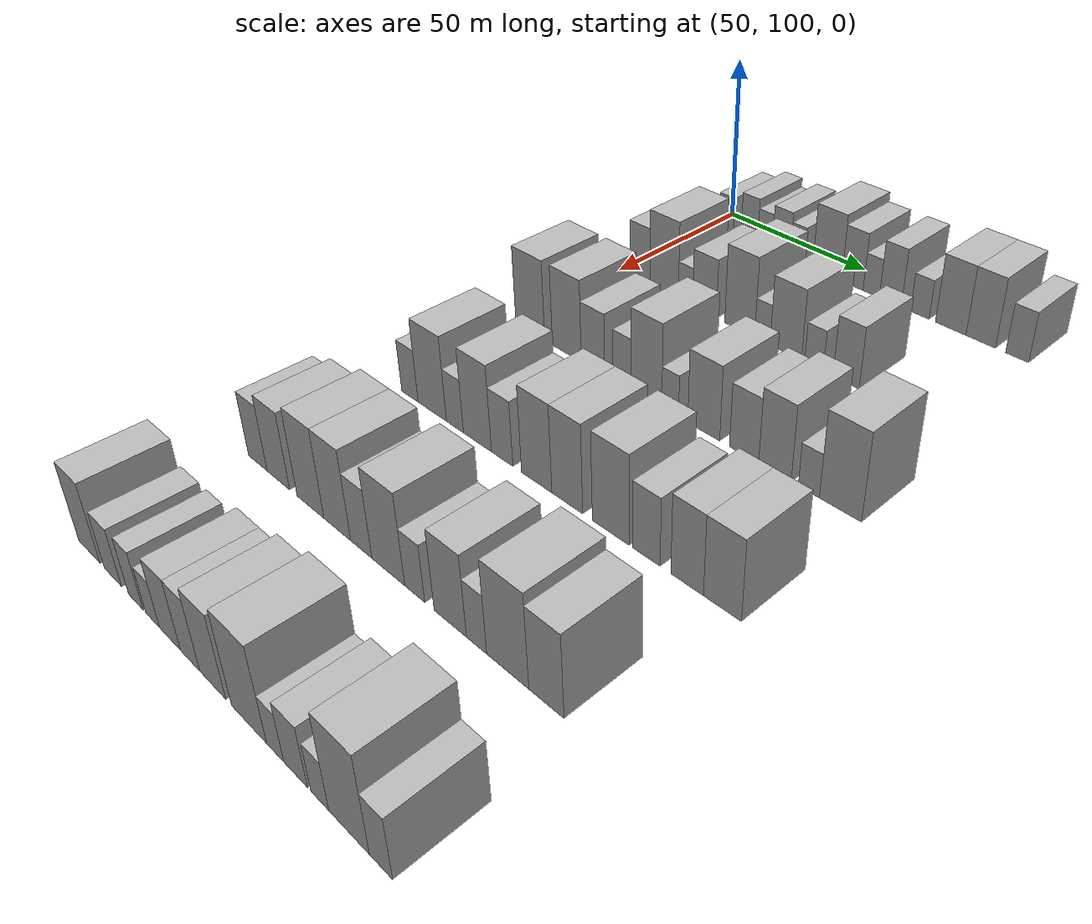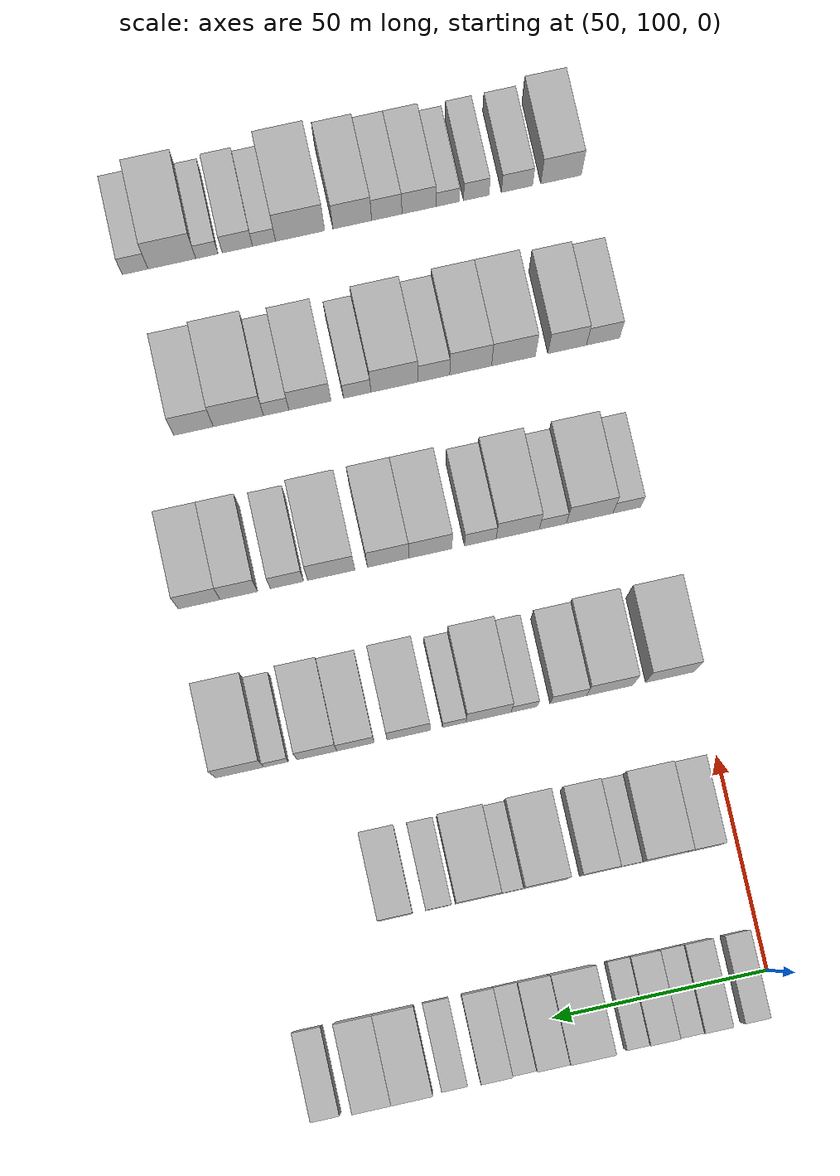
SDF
<sdf version="1.6">
 <world name="default">
  <model name="building_73">
   <static>1</static>
   <pose>50.0000 105.7964 0 0.000000 0.000000 0.000000</pose>
   <link name="link">
    <pose>0 0 6.00 0 0 0</pose>
    <collision name="collision"><geometry><box><size>20.0000 5.8852 12.0000</size></box></geometry></collision>
    <visual name="visual">
     <cast_shadows>0</cast_shadows>
     <geometry><box><size>20.0000 5.8852 12.0000</size></box></geometry>
     <material>
      <script>
       <uri>model://HANNAS_wall/materials/scripts</uri>
       <uri>model://HANNAS_wall/materials/textures</uri>
       <name>vrc/HANNAS_wall</name>
      </script>
     </material>
    </visual>
   </link>
  </model>
  <model name="building_74">
   <static>1</static>
   <pose>50.0000 114.9547 0 0.000000 0.000000 0.000000</pose>
   <link name="link">
    <pose>0 0 7.50 0 0 0</pose>
    <collision name="collision"><geometry><box><size>20.0000 6.4314 15.0000</size></box></geometry></collision>
    <visual name="visual">
     <cast_shadows>0</cast_shadows>
     <geometry><box><size>20.0000 6.4314 15.0000</size></box></geometry>
     <material>
      <script>
       <uri>model://HANNAS_wall/materials/scripts</uri>
       <uri>model://HANNAS_wall/materials/textures</uri>
       <name>vrc/HANNAS_wall</name>
      </script>
     </material>
    </visual>
   </link>
  </model>
  <model name="building_75">
   <static>1</static>
   <pose>50.0000 120.9722 0 0.000000 0.000000 0.000000</pose>
   <link name="link">
    <pose>0 0 6.00 0 0 0</pose>
    <collision name="collision"><geometry><box><size>20.0000 5.6037 12.0000</size></box></geometry></collision>
    <visual name="visual">
     <cast_shadows>0</cast_shadows>
     <geometry><box><size>20.0000 5.6037 12.0000</size></box></geometry>
     <material>
      <script>
       <uri>model://HANNAS_wall/materials/scripts</uri>
       <uri>model://HANNAS_wall/materials/textures</uri>
       <name>vrc/HANNAS_wall</name>
      </script>
     </material>
    </visual>
   </link>
  </model>
  <model name="building_76">
   <static>1</static>
   <pose>50.0000 127.1886 0 0.000000 0.000000 0.000000</pose>
   <link name="link">
    <pose>0 0 7.50 0 0 0</pose>
    <collision name="collision"><geometry><box><size>20.0000 6.8289 15.0000</size></box></geometry></collision>
    <visual name="visual">
     <cast_shadows>0</cast_shadows>
     <geometry><box><size>20.0000 6.8289 15.0000</size></box></geometry>
     <material>
      <script>
       <uri>model://HANNAS_wall/materials/scripts</uri>
       <uri>model://HANNAS_wall/materials/textures</uri>
       <name>vrc/HANNAS_wall</name>
      </script>
     </material>
    </visual>
   </link>
  </model>
  <model name="building_77">
   <static>1</static>
   <pose>50.0000 133.1987 0 0.000000 0.000000 0.000000</pose>
   <link name="link">
    <pose>0 0 6.00 0 0 0</pose>
    <collision name="collision"><geometry><box><size>20.0000 5.1913 12.0000</size></box></geometry></collision>
    <visual name="visual">
     <cast_shadows>0</cast_shadows>
     <geometry><box><size>20.0000 5.1913 12.0000</size></box></geometry>
     <material>
      <script>
       <uri>model://HANNAS_wall/materials/scripts</uri>
       <uri>model://HANNAS_wall/materials/textures</uri>
       <name>vrc/HANNAS_wall</name>
      </script>
     </material>
    </visual>
   </link>
  </model>
  <model name="building_78">
   <static>1</static>
   <pose>50.0000 143.9286 0 0.000000 0.000000 0.000000</pose>
   <link name="link">
    <pose>0 0 10.50 0 0 0</pose>
    <collision name="collision"><geometry><box><size>20.0000 10.2685 21.0000</size></box></geometry></collision>
    <visual name="visual">
     <cast_shadows>0</cast_shadows>
     <geometry><box><size>20.0000 10.2685 21.0000</size></box></geometry>
     <material>
      <script>
       <uri>model://HANNAS_wall/materials/scripts</uri>
       <uri>model://HANNAS_wall/materials/textures</uri>
       <name>vrc/HANNAS_wall</name>
      </script>
     </material>
    </visual>
   </link>
  </model>
  <model name="building_79">
   <static>1</static>
   <pose>50.0000 152.7708 0 0.000000 0.000000 0.000000</pose>
   <link name="link">
    <pose>0 0 9.00 0 0 0</pose>
    <collision name="collision"><geometry><box><size>20.0000 7.4159 18.0000</size></box></geometry></collision>
    <visual name="visual">
     <cast_shadows>0</cast_shadows>
     <geometry><box><size>20.0000 7.4159 18.0000</size></box></geometry>
     <material>
      <script>
       <uri>model://HANNAS_wall/materials/scripts</uri>
       <uri>model://HANNAS_wall/materials/textures</uri>
       <name>vrc/HANNAS_wall</name>
      </script>
     </material>
    </visual>
   </link>
  </model>
  <model name="building_80">
   <static>1</static>
   <pose>50.0000 159.2248 0 0.000000 0.000000 0.000000</pose>
   <link name="link">
    <pose>0 0 6.00 0 0 0</pose>
    <collision name="collision"><geometry><box><size>20.0000 5.4920 12.0000</size></box></geometry></collision>
    <visual name="visual">
     <cast_shadows>0</cast_shadows>
     <geometry><box><size>20.0000 5.4920 12.0000</size></box></geometry>
     <material>
      <script>
       <uri>model://HANNAS_wall/materials/scripts</uri>
       <uri>model://HANNAS_wall/materials/textures</uri>
       <name>vrc/HANNAS_wall</name>
      </script>
     </material>
    </visual>
   </link>
  </model>
  <model name="building_81">
   <static>1</static>
   <pose>50.0000 165.5749 0 0.000000 0.000000 0.000000</pose>
   <link name="link">
    <pose>0 0 9.00 0 0 0</pose>
    <collision name="collision"><geometry><box><size>20.0000 7.2083 18.0000</size></box></geometry></collision>
    <visual name="visual">
     <cast_shadows>0</cast_shadows>
     <geometry><box><size>20.0000 7.2083 18.0000</size></box></geometry>
     <material>
      <script>
       <uri>model://HANNAS_wall/materials/scripts</uri>
       <uri>model://HANNAS_wall/materials/textures</uri>
       <name>vrc/HANNAS_wall</name>
      </script>
     </material>
    </visual>
   </link>
  </model>
  <model name="building_82">
   <static>1</static>
   <pose>50.0000 175.1410 0 0.000000 0.000000 0.000000</pose>
   <link name="link">
    <pose>0 0 6.00 0 0 0</pose>
    <collision name="collision"><geometry><box><size>20.0000 5.9239 12.0000</size></box></geometry></collision>
    <visual name="visual">
     <cast_shadows>0</cast_shadows>
     <geometry><box><size>20.0000 5.9239 12.0000</size></box></geometry>
     <material>
      <script>
       <uri>model://HANNAS_wall/materials/scripts</uri>
       <uri>model://HANNAS_wall/materials/textures</uri>
       <name>vrc/HANNAS_wall</name>
      </script>
     </material>
    </visual>
   </link>
  </model>
  <model name="building_83">
   <static>1</static>
   <pose>50.0000 184.8120 0 0.000000 0.000000 0.000000</pose>
   <link name="link">
    <pose>0 0 10.50 0 0 0</pose>
    <collision name="collision"><geometry><box><size>20.0000 9.4180 21.0000</size></box></geometry></collision>
    <visual name="visual">
     <cast_shadows>0</cast_shadows>
     <geometry><box><size>20.0000 9.4180 21.0000</size></box></geometry>
     <material>
      <script>
       <uri>model://HANNAS_wall/materials/scripts</uri>
       <uri>model://HANNAS_wall/materials/textures</uri>
       <name>vrc/HANNAS_wall</name>
      </script>
     </material>
    </visual>
   </link>
  </model>
  <model name="building_84">
   <static>1</static>
   <pose>50.0000 193.8947 0 0.000000 0.000000 0.000000</pose>
   <link name="link">
    <pose>0 0 10.50 0 0 0</pose>
    <collision name="collision"><geometry><box><size>20.0000 8.7476 21.0000</size></box></geometry></collision>
    <visual name="visual">
     <cast_shadows>0</cast_shadows>
     <geometry><box><size>20.0000 8.7476 21.0000</size></box></geometry>
     <material>
      <script>
       <uri>model://HANNAS_wall/materials/scripts</uri>
       <uri>model://HANNAS_wall/materials/textures</uri>
       <name>vrc/HANNAS_wall</name>
      </script>
     </material>
    </visual>
   </link>
  </model>
  <model name="building_85">
   <static>1</static>
   <pose>50.0000 204.5671 0 0.000000 0.000000 0.000000</pose>
   <link name="link">
    <pose>0 0 7.50 0 0 0</pose>
    <collision name="collision"><geometry><box><size>20.0000 6.5972 15.0000</size></box></geometry></collision>
    <visual name="visual">
     <cast_shadows>0</cast_shadows>
     <geometry><box><size>20.0000 6.5972 15.0000</size></box></geometry>
     <material>
      <script>
       <uri>model://HANNAS_wall/materials/scripts</uri>
       <uri>model://HANNAS_wall/materials/textures</uri>
       <name>vrc/HANNAS_wall</name>
      </script>
     </material>
    </visual>
   </link>
  </model>
  <model name="building_209">
   <static>1</static>
   <pose>90.0000 108.1023 0 0.000000 0.000000 0.000000</pose>
   <link name="link">
    <pose>0 0 9.00 0 0 0</pose>
    <collision name="collision"><geometry><box><size>20.0000 7.8547 18.0000</size></box></geometry></collision>
    <visual name="visual">
     <cast_shadows>0</cast_shadows>
     <geometry><box><size>20.0000 7.8547 18.0000</size></box></geometry>
     <material>
      <script>
       <uri>model://HANNAS_wall/materials/scripts</uri>
       <uri>model://HANNAS_wall/materials/textures</uri>
       <name>vrc/HANNAS_wall</name>
      </script>
     </material>
    </visual>
   </link>
  </model>
  <model name="building_210">
   <static>1</static>
   <pose>90.0000 117.4750 0 0.000000 0.000000 0.000000</pose>
   <link name="link">
    <pose>0 0 12.00 0 0 0</pose>
    <collision name="collision"><geometry><box><size>20.0000 10.8906 24.0000</size></box></geometry></collision>
    <visual name="visual">
     <cast_shadows>0</cast_shadows>
     <geometry><box><size>20.0000 10.8906 24.0000</size></box></geometry>
     <material>
      <script>
       <uri>model://HANNAS_wall/materials/scripts</uri>
       <uri>model://HANNAS_wall/materials/textures</uri>
       <name>vrc/HANNAS_wall</name>
      </script>
     </material>
    </visual>
   </link>
  </model>
  <model name="building_211">
   <static>1</static>
   <pose>90.0000 125.5967 0 0.000000 0.000000 0.000000</pose>
   <link name="link">
    <pose>0 0 6.00 0 0 0</pose>
    <collision name="collision"><geometry><box><size>20.0000 5.3529 12.0000</size></box></geometry></collision>
    <visual name="visual">
     <cast_shadows>0</cast_shadows>
     <geometry><box><size>20.0000 5.3529 12.0000</size></box></geometry>
     <material>
      <script>
       <uri>model://HANNAS_wall/materials/scripts</uri>
       <uri>model://HANNAS_wall/materials/textures</uri>
       <name>vrc/HANNAS_wall</name>
      </script>
     </material>
    </visual>
   </link>
  </model>
  <model name="building_212">
   <static>1</static>
   <pose>90.0000 132.6022 0 0.000000 0.000000 0.000000</pose>
   <link name="link">
    <pose>0 0 9.00 0 0 0</pose>
    <collision name="collision"><geometry><box><size>20.0000 8.6582 18.0000</size></box></geometry></collision>
    <visual name="visual">
     <cast_shadows>0</cast_shadows>
     <geometry><box><size>20.0000 8.6582 18.0000</size></box></geometry>
     <material>
      <script>
       <uri>model://HANNAS_wall/materials/scripts</uri>
       <uri>model://HANNAS_wall/materials/textures</uri>
       <name>vrc/HANNAS_wall</name>
      </script>
     </material>
    </visual>
   </link>
  </model>
  <model name="building_213">
   <static>1</static>
   <pose>90.0000 145.1424 0 0.000000 0.000000 0.000000</pose>
   <link name="link">
    <pose>0 0 12.00 0 0 0</pose>
    <collision name="collision"><geometry><box><size>20.0000 10.4220 24.0000</size></box></geometry></collision>
    <visual name="visual">
     <cast_shadows>0</cast_shadows>
     <geometry><box><size>20.0000 10.4220 24.0000</size></box></geometry>
     <material>
      <script>
       <uri>model://HANNAS_wall/materials/scripts</uri>
       <uri>model://HANNAS_wall/materials/textures</uri>
       <name>vrc/HANNAS_wall</name>
      </script>
     </material>
    </visual>
   </link>
  </model>
  <model name="building_214">
   <static>1</static>
   <pose>90.0000 152.9586 0 0.000000 0.000000 0.000000</pose>
   <link name="link">
    <pose>0 0 6.00 0 0 0</pose>
    <collision name="collision"><geometry><box><size>20.0000 5.2104 12.0000</size></box></geometry></collision>
    <visual name="visual">
     <cast_shadows>0</cast_shadows>
     <geometry><box><size>20.0000 5.2104 12.0000</size></box></geometry>
     <material>
      <script>
       <uri>model://HANNAS_wall/materials/scripts</uri>
       <uri>model://HANNAS_wall/materials/textures</uri>
       <name>vrc/HANNAS_wall</name>
      </script>
     </material>
    </visual>
   </link>
  </model>
  <model name="building_215">
   <static>1</static>
   <pose>90.0000 160.7411 0 0.000000 0.000000 0.000000</pose>
   <link name="link">
    <pose>0 0 10.50 0 0 0</pose>
    <collision name="collision"><geometry><box><size>20.0000 10.3547 21.0000</size></box></geometry></collision>
    <visual name="visual">
     <cast_shadows>0</cast_shadows>
     <geometry><box><size>20.0000 10.3547 21.0000</size></box></geometry>
     <material>
      <script>
       <uri>model://HANNAS_wall/materials/scripts</uri>
       <uri>model://HANNAS_wall/materials/textures</uri>
       <name>vrc/HANNAS_wall</name>
      </script>
     </material>
    </visual>
   </link>
  </model>
  <model name="building_216">
   <static>1</static>
   <pose>90.0000 169.8955 0 0.000000 0.000000 0.000000</pose>
   <link name="link">
    <pose>0 0 6.00 0 0 0</pose>
    <collision name="collision"><geometry><box><size>20.0000 5.9540 12.0000</size></box></geometry></collision>
    <visual name="visual">
     <cast_shadows>0</cast_shadows>
     <geometry><box><size>20.0000 5.9540 12.0000</size></box></geometry>
     <material>
      <script>
       <uri>model://HANNAS_wall/materials/scripts</uri>
       <uri>model://HANNAS_wall/materials/textures</uri>
       <name>vrc/HANNAS_wall</name>
      </script>
     </material>
    </visual>
   </link>
  </model>
  <model name="building_217">
   <static>1</static>
   <pose>90.0000 179.8749 0 0.000000 0.000000 0.000000</pose>
   <link name="link">
    <pose>0 0 9.00 0 0 0</pose>
    <collision name="collision"><geometry><box><size>20.0000 8.0049 18.0000</size></box></geometry></collision>
    <visual name="visual">
     <cast_shadows>0</cast_shadows>
     <geometry><box><size>20.0000 8.0049 18.0000</size></box></geometry>
     <material>
      <script>
       <uri>model://HANNAS_wall/materials/scripts</uri>
       <uri>model://HANNAS_wall/materials/textures</uri>
       <name>vrc/HANNAS_wall</name>
      </script>
     </material>
    </visual>
   </link>
  </model>
  <model name="building_339">
   <static>1</static>
   <pose>130.0000 106.4595 0 0.000000 0.000000 0.000000</pose>
   <link name="link">
    <pose>0 0 12.00 0 0 0</pose>
    <collision name="collision"><geometry><box><size>20.0000 11.4526 24.0000</size></box></geometry></collision>
    <visual name="visual">
     <cast_shadows>0</cast_shadows>
     <geometry><box><size>20.0000 11.4526 24.0000</size></box></geometry>
     <material>
      <script>
       <uri>model://HANNAS_wall/materials/scripts</uri>
       <uri>model://HANNAS_wall/materials/textures</uri>
       <name>vrc/HANNAS_wall</name>
      </script>
     </material>
    </visual>
   </link>
  </model>
  <model name="building_340">
   <static>1</static>
   <pose>130.0000 120.6667 0 0.000000 0.000000 0.000000</pose>
   <link name="link">
    <pose>0 0 12.00 0 0 0</pose>
    <collision name="collision"><geometry><box><size>20.0000 10.9618 24.0000</size></box></geometry></collision>
    <visual name="visual">
     <cast_shadows>0</cast_shadows>
     <geometry><box><size>20.0000 10.9618 24.0000</size></box></geometry>
     <material>
      <script>
       <uri>model://HANNAS_wall/materials/scripts</uri>
       <uri>model://HANNAS_wall/materials/textures</uri>
       <name>vrc/HANNAS_wall</name>
      </script>
     </material>
    </visual>
   </link>
  </model>
  <model name="building_341">
   <static>1</static>
   <pose>130.0000 130.4382 0 0.000000 0.000000 0.000000</pose>
   <link name="link">
    <pose>0 0 9.00 0 0 0</pose>
    <collision name="collision"><geometry><box><size>20.0000 8.5813 18.0000</size></box></geometry></collision>
    <visual name="visual">
     <cast_shadows>0</cast_shadows>
     <geometry><box><size>20.0000 8.5813 18.0000</size></box></geometry>
     <material>
      <script>
       <uri>model://HANNAS_wall/materials/scripts</uri>
       <uri>model://HANNAS_wall/materials/textures</uri>
       <name>vrc/HANNAS_wall</name>
      </script>
     </material>
    </visual>
   </link>
  </model>
  <model name="building_342">
   <static>1</static>
   <pose>130.0000 140.8250 0 0.000000 0.000000 0.000000</pose>
   <link name="link">
    <pose>0 0 7.50 0 0 0</pose>
    <collision name="collision"><geometry><box><size>20.0000 6.1924 15.0000</size></box></geometry></collision>
    <visual name="visual">
     <cast_shadows>0</cast_shadows>
     <geometry><box><size>20.0000 6.1924 15.0000</size></box></geometry>
     <material>
      <script>
       <uri>model://HANNAS_wall/materials/scripts</uri>
       <uri>model://HANNAS_wall/materials/textures</uri>
       <name>vrc/HANNAS_wall</name>
      </script>
     </material>
    </visual>
   </link>
  </model>
  <model name="building_343">
   <static>1</static>
   <pose>130.0000 149.2085 0 0.000000 0.000000 0.000000</pose>
   <link name="link">
    <pose>0 0 12.00 0 0 0</pose>
    <collision name="collision"><geometry><box><size>20.0000 10.5746 24.0000</size></box></geometry></collision>
    <visual name="visual">
     <cast_shadows>0</cast_shadows>
     <geometry><box><size>20.0000 10.5746 24.0000</size></box></geometry>
     <material>
      <script>
       <uri>model://HANNAS_wall/materials/scripts</uri>
       <uri>model://HANNAS_wall/materials/textures</uri>
       <name>vrc/HANNAS_wall</name>
      </script>
     </material>
    </visual>
   </link>
  </model>
  <model name="building_344">
   <static>1</static>
   <pose>130.0000 157.2499 0 0.000000 0.000000 0.000000</pose>
   <link name="link">
    <pose>0 0 6.00 0 0 0</pose>
    <collision name="collision"><geometry><box><size>20.0000 5.5083 12.0000</size></box></geometry></collision>
    <visual name="visual">
     <cast_shadows>0</cast_shadows>
     <geometry><box><size>20.0000 5.5083 12.0000</size></box></geometry>
     <material>
      <script>
       <uri>model://HANNAS_wall/materials/scripts</uri>
       <uri>model://HANNAS_wall/materials/textures</uri>
       <name>vrc/HANNAS_wall</name>
      </script>
     </material>
    </visual>
   </link>
  </model>
  <model name="building_345">
   <static>1</static>
   <pose>130.0000 168.0400 0 0.000000 0.000000 0.000000</pose>
   <link name="link">
    <pose>0 0 10.50 0 0 0</pose>
    <collision name="collision"><geometry><box><size>20.0000 10.0718 21.0000</size></box></geometry></collision>
    <visual name="visual">
     <cast_shadows>0</cast_shadows>
     <geometry><box><size>20.0000 10.0718 21.0000</size></box></geometry>
     <material>
      <script>
       <uri>model://HANNAS_wall/materials/scripts</uri>
       <uri>model://HANNAS_wall/materials/textures</uri>
       <name>vrc/HANNAS_wall</name>
      </script>
     </material>
    </visual>
   </link>
  </model>
  <model name="building_346">
   <static>1</static>
   <pose>130.0000 180.4424 0 0.000000 0.000000 0.000000</pose>
   <link name="link">
    <pose>0 0 9.00 0 0 0</pose>
    <collision name="collision"><geometry><box><size>20.0000 8.7331 18.0000</size></box></geometry></collision>
    <visual name="visual">
     <cast_shadows>0</cast_shadows>
     <geometry><box><size>20.0000 8.7331 18.0000</size></box></geometry>
     <material>
      <script>
       <uri>model://HANNAS_wall/materials/scripts</uri>
       <uri>model://HANNAS_wall/materials/textures</uri>
       <name>vrc/HANNAS_wall</name>
      </script>
     </material>
    </visual>
   </link>
  </model>
  <model name="building_347">
   <static>1</static>
   <pose>130.0000 189.4909 0 0.000000 0.000000 0.000000</pose>
   <link name="link">
    <pose>0 0 10.50 0 0 0</pose>
    <collision name="collision"><geometry><box><size>20.0000 9.3639 21.0000</size></box></geometry></collision>
    <visual name="visual">
     <cast_shadows>0</cast_shadows>
     <geometry><box><size>20.0000 9.3639 21.0000</size></box></geometry>
     <material>
      <script>
       <uri>model://HANNAS_wall/materials/scripts</uri>
       <uri>model://HANNAS_wall/materials/textures</uri>
       <name>vrc/HANNAS_wall</name>
      </script>
     </material>
    </visual>
   </link>
  </model>
  <model name="building_348">
   <static>1</static>
   <pose>130.0000 199.0781 0 0.000000 0.000000 0.000000</pose>
   <link name="link">
    <pose>0 0 6.00 0 0 0</pose>
    <collision name="collision"><geometry><box><size>20.0000 5.8104 12.0000</size></box></geometry></collision>
    <visual name="visual">
     <cast_shadows>0</cast_shadows>
     <geometry><box><size>20.0000 5.8104 12.0000</size></box></geometry>
     <material>
      <script>
       <uri>model://HANNAS_wall/materials/scripts</uri>
       <uri>model://HANNAS_wall/materials/textures</uri>
       <name>vrc/HANNAS_wall</name>
      </script>
     </material>
    </visual>
   </link>
  </model>
  <model name="building_349">
   <static>1</static>
   <pose>130.0000 207.6101 0 0.000000 0.000000 0.000000</pose>
   <link name="link">
    <pose>0 0 12.00 0 0 0</pose>
    <collision name="collision"><geometry><box><size>20.0000 11.2536 24.0000</size></box></geometry></collision>
    <visual name="visual">
     <cast_shadows>0</cast_shadows>
     <geometry><box><size>20.0000 11.2536 24.0000</size></box></geometry>
     <material>
      <script>
       <uri>model://HANNAS_wall/materials/scripts</uri>
       <uri>model://HANNAS_wall/materials/textures</uri>
       <name>vrc/HANNAS_wall</name>
      </script>
     </material>
    </visual>
   </link>
  </model>
  <model name="building_481">
   <static>1</static>
   <pose>170.0000 107.3435 0 0.000000 0.000000 0.000000</pose>
   <link name="link">
    <pose>0 0 7.50 0 0 0</pose>
    <collision name="collision"><geometry><box><size>20.0000 6.6034 15.0000</size></box></geometry></collision>
    <visual name="visual">
     <cast_shadows>0</cast_shadows>
     <geometry><box><size>20.0000 6.6034 15.0000</size></box></geometry>
     <material>
      <script>
       <uri>model://HANNAS_wall/materials/scripts</uri>
       <uri>model://HANNAS_wall/materials/textures</uri>
       <name>vrc/HANNAS_wall</name>
      </script>
     </material>
    </visual>
   </link>
  </model>
  <model name="building_482">
   <static>1</static>
   <pose>170.0000 116.2021 0 0.000000 0.000000 0.000000</pose>
   <link name="link">
    <pose>0 0 12.00 0 0 0</pose>
    <collision name="collision"><geometry><box><size>20.0000 11.1137 24.0000</size></box></geometry></collision>
    <visual name="visual">
     <cast_shadows>0</cast_shadows>
     <geometry><box><size>20.0000 11.1137 24.0000</size></box></geometry>
     <material>
      <script>
       <uri>model://HANNAS_wall/materials/scripts</uri>
       <uri>model://HANNAS_wall/materials/textures</uri>
       <name>vrc/HANNAS_wall</name>
      </script>
     </material>
    </visual>
   </link>
  </model>
  <model name="building_483">
   <static>1</static>
   <pose>170.0000 124.9570 0 0.000000 0.000000 0.000000</pose>
   <link name="link">
    <pose>0 0 7.50 0 0 0</pose>
    <collision name="collision"><geometry><box><size>20.0000 6.3961 15.0000</size></box></geometry></collision>
    <visual name="visual">
     <cast_shadows>0</cast_shadows>
     <geometry><box><size>20.0000 6.3961 15.0000</size></box></geometry>
     <material>
      <script>
       <uri>model://HANNAS_wall/materials/scripts</uri>
       <uri>model://HANNAS_wall/materials/textures</uri>
       <name>vrc/HANNAS_wall</name>
      </script>
     </material>
    </visual>
   </link>
  </model>
  <model name="building_484">
   <static>1</static>
   <pose>170.0000 133.2918 0 0.000000 0.000000 0.000000</pose>
   <link name="link">
    <pose>0 0 12.00 0 0 0</pose>
    <collision name="collision"><geometry><box><size>20.0000 10.2735 24.0000</size></box></geometry></collision>
    <visual name="visual">
     <cast_shadows>0</cast_shadows>
     <geometry><box><size>20.0000 10.2735 24.0000</size></box></geometry>
     <material>
      <script>
       <uri>model://HANNAS_wall/materials/scripts</uri>
       <uri>model://HANNAS_wall/materials/textures</uri>
       <name>vrc/HANNAS_wall</name>
      </script>
     </material>
    </visual>
   </link>
  </model>
  <model name="building_485">
   <static>1</static>
   <pose>170.0000 142.1737 0 0.000000 0.000000 0.000000</pose>
   <link name="link">
    <pose>0 0 9.00 0 0 0</pose>
    <collision name="collision"><geometry><box><size>20.0000 7.4903 18.0000</size></box></geometry></collision>
    <visual name="visual">
     <cast_shadows>0</cast_shadows>
     <geometry><box><size>20.0000 7.4903 18.0000</size></box></geometry>
     <material>
      <script>
       <uri>model://HANNAS_wall/materials/scripts</uri>
       <uri>model://HANNAS_wall/materials/textures</uri>
       <name>vrc/HANNAS_wall</name>
      </script>
     </material>
    </visual>
   </link>
  </model>
  <model name="building_486">
   <static>1</static>
   <pose>170.0000 153.9751 0 0.000000 0.000000 0.000000</pose>
   <link name="link">
    <pose>0 0 12.00 0 0 0</pose>
    <collision name="collision"><geometry><box><size>20.0000 10.1125 24.0000</size></box></geometry></collision>
    <visual name="visual">
     <cast_shadows>0</cast_shadows>
     <geometry><box><size>20.0000 10.1125 24.0000</size></box></geometry>
     <material>
      <script>
       <uri>model://HANNAS_wall/materials/scripts</uri>
       <uri>model://HANNAS_wall/materials/textures</uri>
       <name>vrc/HANNAS_wall</name>
      </script>
     </material>
    </visual>
   </link>
  </model>
  <model name="building_487">
   <static>1</static>
   <pose>170.0000 163.9671 0 0.000000 0.000000 0.000000</pose>
   <link name="link">
    <pose>0 0 12.00 0 0 0</pose>
    <collision name="collision"><geometry><box><size>20.0000 9.8715 24.0000</size></box></geometry></collision>
    <visual name="visual">
     <cast_shadows>0</cast_shadows>
     <geometry><box><size>20.0000 9.8715 24.0000</size></box></geometry>
     <material>
      <script>
       <uri>model://HANNAS_wall/materials/scripts</uri>
       <uri>model://HANNAS_wall/materials/textures</uri>
       <name>vrc/HANNAS_wall</name>
      </script>
     </material>
    </visual>
   </link>
  </model>
  <model name="building_488">
   <static>1</static>
   <pose>170.0000 177.4528 0 0.000000 0.000000 0.000000</pose>
   <link name="link">
    <pose>0 0 12.00 0 0 0</pose>
    <collision name="collision"><geometry><box><size>20.0000 11.1000 24.0000</size></box></geometry></collision>
    <visual name="visual">
     <cast_shadows>0</cast_shadows>
     <geometry><box><size>20.0000 11.1000 24.0000</size></box></geometry>
     <material>
      <script>
       <uri>model://HANNAS_wall/materials/scripts</uri>
       <uri>model://HANNAS_wall/materials/textures</uri>
       <name>vrc/HANNAS_wall</name>
      </script>
     </material>
    </visual>
   </link>
  </model>
  <model name="building_489">
   <static>1</static>
   <pose>170.0000 187.9369 0 0.000000 0.000000 0.000000</pose>
   <link name="link">
    <pose>0 0 9.00 0 0 0</pose>
    <collision name="collision"><geometry><box><size>20.0000 7.8681 18.0000</size></box></geometry></collision>
    <visual name="visual">
     <cast_shadows>0</cast_shadows>
     <geometry><box><size>20.0000 7.8681 18.0000</size></box></geometry>
     <material>
      <script>
       <uri>model://HANNAS_wall/materials/scripts</uri>
       <uri>model://HANNAS_wall/materials/textures</uri>
       <name>vrc/HANNAS_wall</name>
      </script>
     </material>
    </visual>
   </link>
  </model>
  <model name="building_490">
   <static>1</static>
   <pose>170.0000 199.2944 0 0.000000 0.000000 0.000000</pose>
   <link name="link">
    <pose>0 0 10.50 0 0 0</pose>
    <collision name="collision"><geometry><box><size>20.0000 8.8469 21.0000</size></box></geometry></collision>
    <visual name="visual">
     <cast_shadows>0</cast_shadows>
     <geometry><box><size>20.0000 8.8469 21.0000</size></box></geometry>
     <material>
      <script>
       <uri>model://HANNAS_wall/materials/scripts</uri>
       <uri>model://HANNAS_wall/materials/textures</uri>
       <name>vrc/HANNAS_wall</name>
      </script>
     </material>
    </visual>
   </link>
  </model>
  <model name="building_491">
   <static>1</static>
   <pose>170.0000 208.6546 0 0.000000 0.000000 0.000000</pose>
   <link name="link">
    <pose>0 0 10.50 0 0 0</pose>
    <collision name="collision"><geometry><box><size>20.0000 9.8735 21.0000</size></box></geometry></collision>
    <visual name="visual">
     <cast_shadows>0</cast_shadows>
     <geometry><box><size>20.0000 9.8735 21.0000</size></box></geometry>
     <material>
      <script>
       <uri>model://HANNAS_wall/materials/scripts</uri>
       <uri>model://HANNAS_wall/materials/textures</uri>
       <name>vrc/HANNAS_wall</name>
      </script>
     </material>
    </visual>
   </link>
  </model>
  <model name="building_620">
   <static>1</static>
   <pose>210.0000 103.8208 0 0.000000 0.000000 0.000000</pose>
   <link name="link">
    <pose>0 0 9.00 0 0 0</pose>
    <collision name="collision"><geometry><box><size>20.0000 7.9031 18.0000</size></box></geometry></collision>
    <visual name="visual">
     <cast_shadows>0</cast_shadows>
     <geometry><box><size>20.0000 7.9031 18.0000</size></box></geometry>
     <material>
      <script>
       <uri>model://HANNAS_wall/materials/scripts</uri>
       <uri>model://HANNAS_wall/materials/textures</uri>
       <name>vrc/HANNAS_wall</name>
      </script>
     </material>
    </visual>
   </link>
  </model>
  <model name="building_621">
   <static>1</static>
   <pose>210.0000 112.4074 0 0.000000 0.000000 0.000000</pose>
   <link name="link">
    <pose>0 0 10.50 0 0 0</pose>
    <collision name="collision"><geometry><box><size>20.0000 9.2701 21.0000</size></box></geometry></collision>
    <visual name="visual">
     <cast_shadows>0</cast_shadows>
     <geometry><box><size>20.0000 9.2701 21.0000</size></box></geometry>
     <material>
      <script>
       <uri>model://HANNAS_wall/materials/scripts</uri>
       <uri>model://HANNAS_wall/materials/textures</uri>
       <name>vrc/HANNAS_wall</name>
      </script>
     </material>
    </visual>
   </link>
  </model>
  <model name="building_622">
   <static>1</static>
   <pose>210.0000 125.2711 0 0.000000 0.000000 0.000000</pose>
   <link name="link">
    <pose>0 0 12.00 0 0 0</pose>
    <collision name="collision"><geometry><box><size>20.0000 10.4572 24.0000</size></box></geometry></collision>
    <visual name="visual">
     <cast_shadows>0</cast_shadows>
     <geometry><box><size>20.0000 10.4572 24.0000</size></box></geometry>
     <material>
      <script>
       <uri>model://HANNAS_wall/materials/scripts</uri>
       <uri>model://HANNAS_wall/materials/textures</uri>
       <name>vrc/HANNAS_wall</name>
      </script>
     </material>
    </visual>
   </link>
  </model>
  <model name="building_623">
   <static>1</static>
   <pose>210.0000 135.5046 0 0.000000 0.000000 0.000000</pose>
   <link name="link">
    <pose>0 0 12.00 0 0 0</pose>
    <collision name="collision"><geometry><box><size>20.0000 10.0097 24.0000</size></box></geometry></collision>
    <visual name="visual">
     <cast_shadows>0</cast_shadows>
     <geometry><box><size>20.0000 10.0097 24.0000</size></box></geometry>
     <material>
      <script>
       <uri>model://HANNAS_wall/materials/scripts</uri>
       <uri>model://HANNAS_wall/materials/textures</uri>
       <name>vrc/HANNAS_wall</name>
      </script>
     </material>
    </visual>
   </link>
  </model>
  <model name="building_624">
   <static>1</static>
   <pose>210.0000 144.2859 0 0.000000 0.000000 0.000000</pose>
   <link name="link">
    <pose>0 0 9.00 0 0 0</pose>
    <collision name="collision"><geometry><box><size>20.0000 7.5529 18.0000</size></box></geometry></collision>
    <visual name="visual">
     <cast_shadows>0</cast_shadows>
     <geometry><box><size>20.0000 7.5529 18.0000</size></box></geometry>
     <material>
      <script>
       <uri>model://HANNAS_wall/materials/scripts</uri>
       <uri>model://HANNAS_wall/materials/textures</uri>
       <name>vrc/HANNAS_wall</name>
      </script>
     </material>
    </visual>
   </link>
  </model>
  <model name="building_625">
   <static>1</static>
   <pose>210.0000 153.6860 0 0.000000 0.000000 0.000000</pose>
   <link name="link">
    <pose>0 0 12.00 0 0 0</pose>
    <collision name="collision"><geometry><box><size>20.0000 11.2474 24.0000</size></box></geometry></collision>
    <visual name="visual">
     <cast_shadows>0</cast_shadows>
     <geometry><box><size>20.0000 11.2474 24.0000</size></box></geometry>
     <material>
      <script>
       <uri>model://HANNAS_wall/materials/scripts</uri>
       <uri>model://HANNAS_wall/materials/textures</uri>
       <name>vrc/HANNAS_wall</name>
      </script>
     </material>
    </visual>
   </link>
  </model>
  <model name="building_626">
   <static>1</static>
   <pose>210.0000 162.5808 0 0.000000 0.000000 0.000000</pose>
   <link name="link">
    <pose>0 0 7.50 0 0 0</pose>
    <collision name="collision"><geometry><box><size>20.0000 6.5421 15.0000</size></box></geometry></collision>
    <visual name="visual">
     <cast_shadows>0</cast_shadows>
     <geometry><box><size>20.0000 6.5421 15.0000</size></box></geometry>
     <material>
      <script>
       <uri>model://HANNAS_wall/materials/scripts</uri>
       <uri>model://HANNAS_wall/materials/textures</uri>
       <name>vrc/HANNAS_wall</name>
      </script>
     </material>
    </visual>
   </link>
  </model>
  <model name="building_627">
   <static>1</static>
   <pose>210.0000 173.8556 0 0.000000 0.000000 0.000000</pose>
   <link name="link">
    <pose>0 0 10.50 0 0 0</pose>
    <collision name="collision"><geometry><box><size>20.0000 10.0076 21.0000</size></box></geometry></collision>
    <visual name="visual">
     <cast_shadows>0</cast_shadows>
     <geometry><box><size>20.0000 10.0076 21.0000</size></box></geometry>
     <material>
      <script>
       <uri>model://HANNAS_wall/materials/scripts</uri>
       <uri>model://HANNAS_wall/materials/textures</uri>
       <name>vrc/HANNAS_wall</name>
      </script>
     </material>
    </visual>
   </link>
  </model>
  <model name="building_628">
   <static>1</static>
   <pose>210.0000 181.8722 0 0.000000 0.000000 0.000000</pose>
   <link name="link">
    <pose>0 0 7.50 0 0 0</pose>
    <collision name="collision"><geometry><box><size>20.0000 6.0256 15.0000</size></box></geometry></collision>
    <visual name="visual">
     <cast_shadows>0</cast_shadows>
     <geometry><box><size>20.0000 6.0256 15.0000</size></box></geometry>
     <material>
      <script>
       <uri>model://HANNAS_wall/materials/scripts</uri>
       <uri>model://HANNAS_wall/materials/textures</uri>
       <name>vrc/HANNAS_wall</name>
      </script>
     </material>
    </visual>
   </link>
  </model>
  <model name="building_629">
   <static>1</static>
   <pose>210.0000 190.8622 0 0.000000 0.000000 0.000000</pose>
   <link name="link">
    <pose>0 0 12.00 0 0 0</pose>
    <collision name="collision"><geometry><box><size>20.0000 11.9543 24.0000</size></box></geometry></collision>
    <visual name="visual">
     <cast_shadows>0</cast_shadows>
     <geometry><box><size>20.0000 11.9543 24.0000</size></box></geometry>
     <material>
      <script>
       <uri>model://HANNAS_wall/materials/scripts</uri>
       <uri>model://HANNAS_wall/materials/textures</uri>
       <name>vrc/HANNAS_wall</name>
      </script>
     </material>
    </visual>
   </link>
  </model>
  <model name="building_630">
   <static>1</static>
   <pose>210.0000 201.5550 0 0.000000 0.000000 0.000000</pose>
   <link name="link">
    <pose>0 0 10.50 0 0 0</pose>
    <collision name="collision"><geometry><box><size>20.0000 9.4315 21.0000</size></box></geometry></collision>
    <visual name="visual">
     <cast_shadows>0</cast_shadows>
     <geometry><box><size>20.0000 9.4315 21.0000</size></box></geometry>
     <material>
      <script>
       <uri>model://HANNAS_wall/materials/scripts</uri>
       <uri>model://HANNAS_wall/materials/textures</uri>
       <name>vrc/HANNAS_wall</name>
      </script>
     </material>
    </visual>
   </link>
  </model>
  <model name="building_759">
   <static>1</static>
   <pose>250.0000 104.7570 0 0.000000 0.000000 0.000000</pose>
   <link name="link">
    <pose>0 0 10.50 0 0 0</pose>
    <collision name="collision"><geometry><box><size>20.0000 9.7647 21.0000</size></box></geometry></collision>
    <visual name="visual">
     <cast_shadows>0</cast_shadows>
     <geometry><box><size>20.0000 9.7647 21.0000</size></box></geometry>
     <material>
      <script>
       <uri>model://HANNAS_wall/materials/scripts</uri>
       <uri>model://HANNAS_wall/materials/textures</uri>
       <name>vrc/HANNAS_wall</name>
      </script>
     </material>
    </visual>
   </link>
  </model>
  <model name="building_760">
   <static>1</static>
   <pose>250.0000 115.3885 0 0.000000 0.000000 0.000000</pose>
   <link name="link">
    <pose>0 0 7.50 0 0 0</pose>
    <collision name="collision"><geometry><box><size>20.0000 7.4984 15.0000</size></box></geometry></collision>
    <visual name="visual">
     <cast_shadows>0</cast_shadows>
     <geometry><box><size>20.0000 7.4984 15.0000</size></box></geometry>
     <material>
      <script>
       <uri>model://HANNAS_wall/materials/scripts</uri>
       <uri>model://HANNAS_wall/materials/textures</uri>
       <name>vrc/HANNAS_wall</name>
      </script>
     </material>
    </visual>
   </link>
  </model>
  <model name="building_761">
   <static>1</static>
   <pose>250.0000 125.2013 0 0.000000 0.000000 0.000000</pose>
   <link name="link">
    <pose>0 0 7.50 0 0 0</pose>
    <collision name="collision"><geometry><box><size>20.0000 6.1272 15.0000</size></box></geometry></collision>
    <visual name="visual">
     <cast_shadows>0</cast_shadows>
     <geometry><box><size>20.0000 6.1272 15.0000</size></box></geometry>
     <material>
      <script>
       <uri>model://HANNAS_wall/materials/scripts</uri>
       <uri>model://HANNAS_wall/materials/textures</uri>
       <name>vrc/HANNAS_wall</name>
      </script>
     </material>
    </visual>
   </link>
  </model>
  <model name="building_762">
   <static>1</static>
   <pose>250.0000 132.0814 0 0.000000 0.000000 0.000000</pose>
   <link name="link">
    <pose>0 0 6.00 0 0 0</pose>
    <collision name="collision"><geometry><box><size>20.0000 5.6329 12.0000</size></box></geometry></collision>
    <visual name="visual">
     <cast_shadows>0</cast_shadows>
     <geometry><box><size>20.0000 5.6329 12.0000</size></box></geometry>
     <material>
      <script>
       <uri>model://HANNAS_wall/materials/scripts</uri>
       <uri>model://HANNAS_wall/materials/textures</uri>
       <name>vrc/HANNAS_wall</name>
      </script>
     </material>
    </visual>
   </link>
  </model>
  <model name="building_763">
   <static>1</static>
   <pose>250.0000 138.9812 0 0.000000 0.000000 0.000000</pose>
   <link name="link">
    <pose>0 0 9.00 0 0 0</pose>
    <collision name="collision"><geometry><box><size>20.0000 8.1667 18.0000</size></box></geometry></collision>
    <visual name="visual">
     <cast_shadows>0</cast_shadows>
     <geometry><box><size>20.0000 8.1667 18.0000</size></box></geometry>
     <material>
      <script>
       <uri>model://HANNAS_wall/materials/scripts</uri>
       <uri>model://HANNAS_wall/materials/textures</uri>
       <name>vrc/HANNAS_wall</name>
      </script>
     </material>
    </visual>
   </link>
  </model>
  <model name="building_764">
   <static>1</static>
   <pose>250.0000 146.7114 0 0.000000 0.000000 0.000000</pose>
   <link name="link">
    <pose>0 0 9.00 0 0 0</pose>
    <collision name="collision"><geometry><box><size>20.0000 7.2937 18.0000</size></box></geometry></collision>
    <visual name="visual">
     <cast_shadows>0</cast_shadows>
     <geometry><box><size>20.0000 7.2937 18.0000</size></box></geometry>
     <material>
      <script>
       <uri>model://HANNAS_wall/materials/scripts</uri>
       <uri>model://HANNAS_wall/materials/textures</uri>
       <name>vrc/HANNAS_wall</name>
      </script>
     </material>
    </visual>
   </link>
  </model>
  <model name="building_765">
   <static>1</static>
   <pose>250.0000 155.0066 0 0.000000 0.000000 0.000000</pose>
   <link name="link">
    <pose>0 0 10.50 0 0 0</pose>
    <collision name="collision"><geometry><box><size>20.0000 9.2968 21.0000</size></box></geometry></collision>
    <visual name="visual">
     <cast_shadows>0</cast_shadows>
     <geometry><box><size>20.0000 9.2968 21.0000</size></box></geometry>
     <material>
      <script>
       <uri>model://HANNAS_wall/materials/scripts</uri>
       <uri>model://HANNAS_wall/materials/textures</uri>
       <name>vrc/HANNAS_wall</name>
      </script>
     </material>
    </visual>
   </link>
  </model>
  <model name="building_766">
   <static>1</static>
   <pose>250.0000 167.5458 0 0.000000 0.000000 0.000000</pose>
   <link name="link">
    <pose>0 0 12.00 0 0 0</pose>
    <collision name="collision"><geometry><box><size>20.0000 11.7815 24.0000</size></box></geometry></collision>
    <visual name="visual">
     <cast_shadows>0</cast_shadows>
     <geometry><box><size>20.0000 11.7815 24.0000</size></box></geometry>
     <material>
      <script>
       <uri>model://HANNAS_wall/materials/scripts</uri>
       <uri>model://HANNAS_wall/materials/textures</uri>
       <name>vrc/HANNAS_wall</name>
      </script>
     </material>
    </visual>
   </link>
  </model>
  <model name="building_767">
   <static>1</static>
   <pose>250.0000 176.1910 0 0.000000 0.000000 0.000000</pose>
   <link name="link">
    <pose>0 0 6.00 0 0 0</pose>
    <collision name="collision"><geometry><box><size>20.0000 5.5089 12.0000</size></box></geometry></collision>
    <visual name="visual">
     <cast_shadows>0</cast_shadows>
     <geometry><box><size>20.0000 5.5089 12.0000</size></box></geometry>
     <material>
      <script>
       <uri>model://HANNAS_wall/materials/scripts</uri>
       <uri>model://HANNAS_wall/materials/textures</uri>
       <name>vrc/HANNAS_wall</name>
      </script>
     </material>
    </visual>
   </link>
  </model>
  <model name="building_768">
   <static>1</static>
   <pose>250.0000 182.5848 0 0.000000 0.000000 0.000000</pose>
   <link name="link">
    <pose>0 0 7.50 0 0 0</pose>
    <collision name="collision"><geometry><box><size>20.0000 7.2788 15.0000</size></box></geometry></collision>
    <visual name="visual">
     <cast_shadows>0</cast_shadows>
     <geometry><box><size>20.0000 7.2788 15.0000</size></box></geometry>
     <material>
      <script>
       <uri>model://HANNAS_wall/materials/scripts</uri>
       <uri>model://HANNAS_wall/materials/textures</uri>
       <name>vrc/HANNAS_wall</name>
      </script>
     </material>
    </visual>
   </link>
  </model>
  <model name="building_769">
   <static>1</static>
   <pose>250.0000 189.8993 0 0.000000 0.000000 0.000000</pose>
   <link name="link">
    <pose>0 0 6.00 0 0 0</pose>
    <collision name="collision"><geometry><box><size>20.0000 5.3502 12.0000</size></box></geometry></collision>
    <visual name="visual">
     <cast_shadows>0</cast_shadows>
     <geometry><box><size>20.0000 5.3502 12.0000</size></box></geometry>
     <material>
      <script>
       <uri>model://HANNAS_wall/materials/scripts</uri>
       <uri>model://HANNAS_wall/materials/textures</uri>
       <name>vrc/HANNAS_wall</name>
      </script>
     </material>
    </visual>
   </link>
  </model>
  <model name="building_770">
   <static>1</static>
   <pose>250.0000 198.2873 0 0.000000 0.000000 0.000000</pose>
   <link name="link">
    <pose>0 0 12.00 0 0 0</pose>
    <collision name="collision"><geometry><box><size>20.0000 11.4258 24.0000</size></box></geometry></collision>
    <visual name="visual">
     <cast_shadows>0</cast_shadows>
     <geometry><box><size>20.0000 11.4258 24.0000</size></box></geometry>
     <material>
      <script>
       <uri>model://HANNAS_wall/materials/scripts</uri>
       <uri>model://HANNAS_wall/materials/textures</uri>
       <name>vrc/HANNAS_wall</name>
      </script>
     </material>
    </visual>
   </link>
  </model>
  <model name="building_771">
   <static>1</static>
   <pose>250.0000 207.0915 0 0.000000 0.000000 0.000000</pose>
   <link name="link">
    <pose>0 0 7.50 0 0 0</pose>
    <collision name="collision"><geometry><box><size>20.0000 6.1825 15.0000</size></box></geometry></collision>
    <visual name="visual">
     <cast_shadows>0</cast_shadows>
     <geometry><box><size>20.0000 6.1825 15.0000</size></box></geometry>
     <material>
      <script>
       <uri>model://HANNAS_wall/materials/scripts</uri>
       <uri>model://HANNAS_wall/materials/textures</uri>
       <name>vrc/HANNAS_wall</name>
      </script>
     </material>
    </visual>
   </link>
  </model>
 </world>
</sdf>
